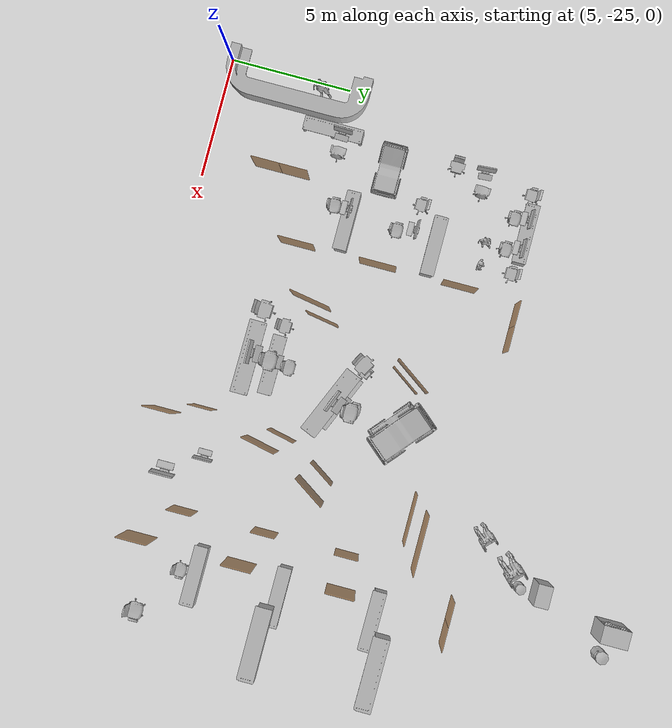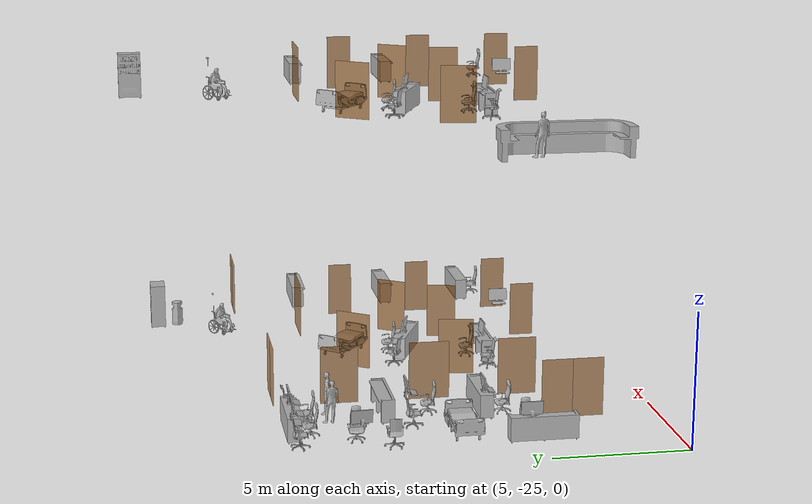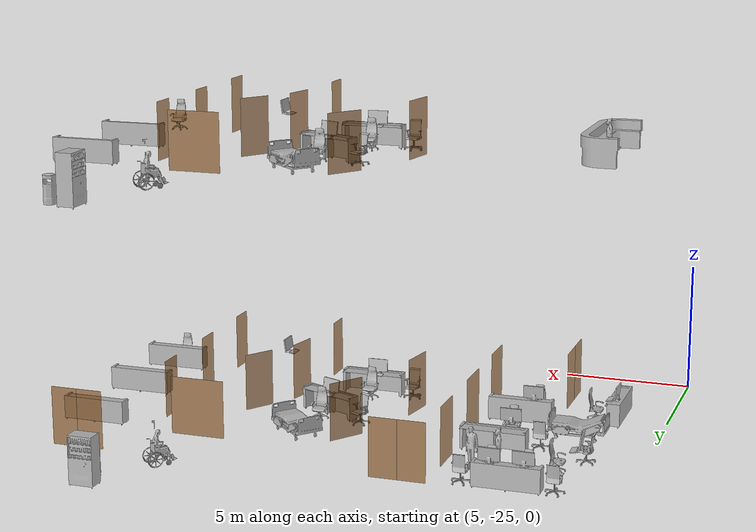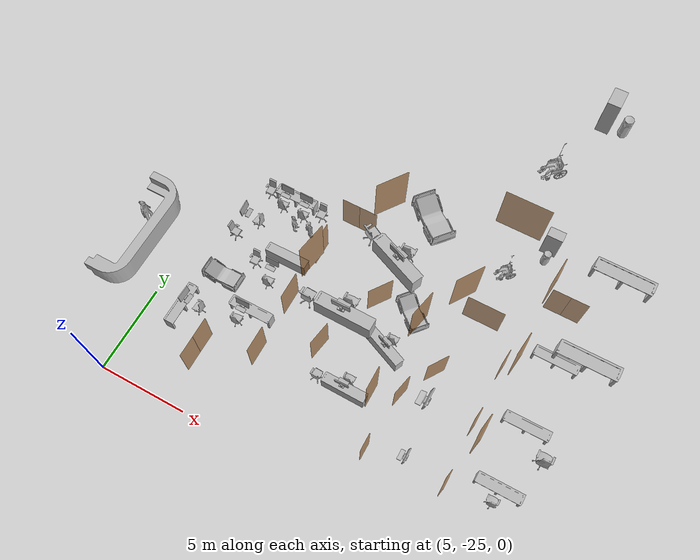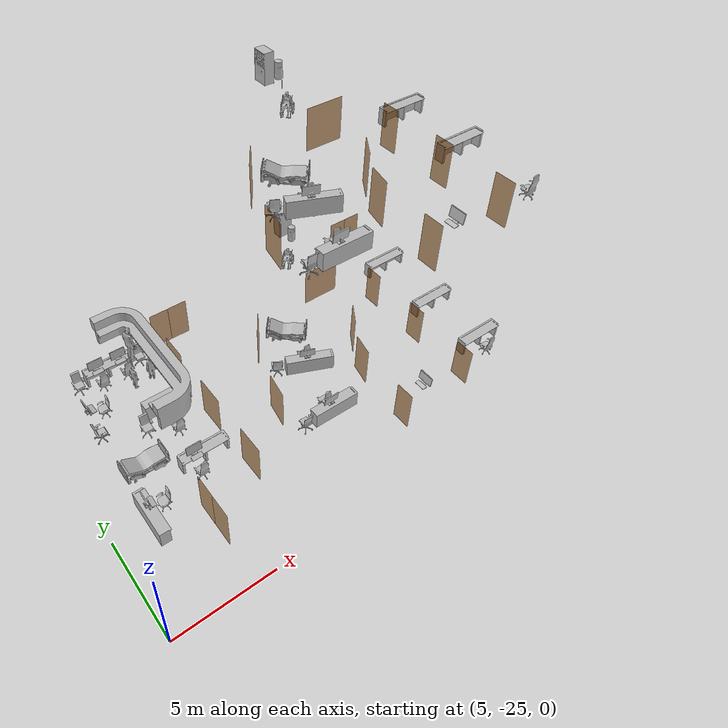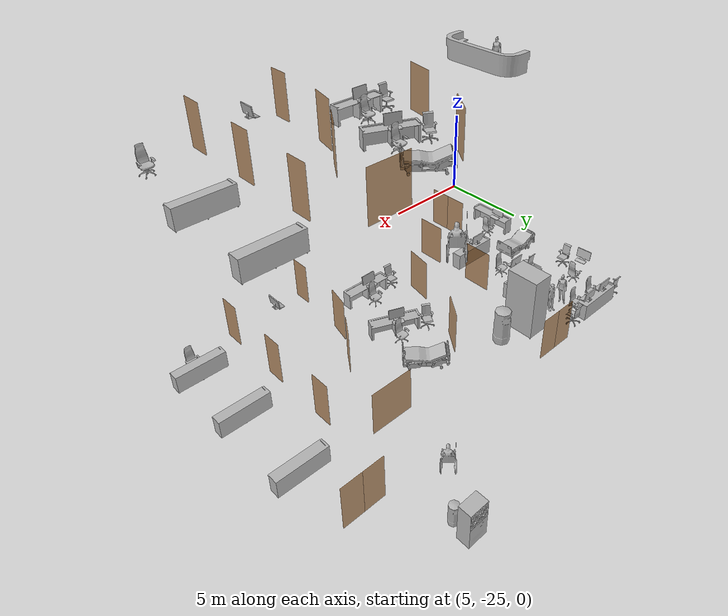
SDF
<sdf version="1.7">
 <world name="sim_world">
  <include>
   <name>OpenRobotics/CGMVanguard_13</name>
   <uri>model://CGMVanguard</uri>
   <pose>17.883800623052974 -14.5233106418984 0.0 0 0 -0.7084</pose>
   <static>True</static>
  </include>
  <include>
   <name>OpenRobotics/CGMVanguard_18</name>
   <uri>model://CGMVanguard</uri>
   <pose>7.788492750278842 -17.53642552209532 0.0 0 0 0.0</pose>
   <static>True</static>
  </include>
  <include>
   <name>OpenRobotics/NurseTable</name>
   <uri>model://NurseTable</uri>
   <pose>9.008949655782477 -11.460766893581026 0.0 0 0 0.0</pose>
   <static>True</static>
  </include>
  <include>
   <name>OpenRobotics/NurseTable_13</name>
   <uri>model://NurseTable</uri>
   <pose>6.869993461789938 -20.165659013114897 0.0 0 0 1.5708</pose>
   <static>True</static>
  </include>
  <include>
   <name>OpenRobotics/NurseTable_21</name>
   <uri>model://NurseTable</uri>
   <pose>16.804226760509227 -20.1163916772432 0.0 0 0 3.1309</pose>
   <static>True</static>
  </include>
  <include>
   <name>OpenRobotics/NurseTable_22</name>
   <uri>model://NurseTable</uri>
   <pose>17.55074804815201 -17.118864659051592 0.0 0 0 2.7367</pose>
   <static>True</static>
  </include>
  <include>
   <name>OpenRobotics/NurseTable_23</name>
   <uri>model://NurseTable</uri>
   <pose>25.736421676089403 -13.476554747894324 0.0 0 0 -0.0073</pose>
   <static>True</static>
  </include>
  <include>
   <name>OpenRobotics/NurseTable_24</name>
   <uri>model://NurseTable</uri>
   <pose>25.779766162839913 -17.413095650167318 0.0 0 0 0.0011</pose>
   <static>True</static>
  </include>
  <include>
   <name>OpenRobotics/NurseTable_25</name>
   <uri>model://NurseTable</uri>
   <pose>25.825910541902257 -20.877827775854794 0.0 0 0 -0.0008</pose>
   <static>True</static>
  </include>
  <include>
   <name>OpenRobotics/NurseTable_41</name>
   <uri>model://NurseTable</uri>
   <pose>10.358066997423185 -18.63942156070922 0.0 0 0 0.0</pose>
   <static>True</static>
  </include>
  <include>
   <name>OpenRobotics/NurseTable_44</name>
   <uri>model://NurseTable</uri>
   <pose>10.435117880081545 -15.01296873197186 0.0 0 0 3.1416</pose>
   <static>True</static>
  </include>
  <include>
   <name>OpenRobotics/DeskChair_6</name>
   <uri>model://DeskChair</uri>
   <pose>8.457209338102388 -12.107515095573259 0.0 0 0 1.5708</pose>
   <static>True</static>
  </include>
  <include>
   <name>OpenRobotics/DeskChair_7</name>
   <uri>model://DeskChair</uri>
   <pose>9.777573939463874 -12.138798507749712 0.0 0 0 1.5708</pose>
   <static>True</static>
  </include>
  <include>
   <name>OpenRobotics/DeskChair_8</name>
   <uri>model://DeskChair</uri>
   <pose>7.7663628321987686 -13.647159724625988 0.0 0 0 3.085</pose>
   <static>True</static>
  </include>
  <include>
   <name>OpenRobotics/DeskChair_9</name>
   <uri>model://DeskChair</uri>
   <pose>10.174431752624908 -16.65626322064537 0.0 0 0 1.5708</pose>
   <static>True</static>
  </include>
  <include>
   <name>OpenRobotics/DeskChair_10</name>
   <uri>model://DeskChair</uri>
   <pose>9.840140763816784 -19.37897003961388 0.0 0 0 1.6366</pose>
   <static>True</static>
  </include>
  <include>
   <name>OpenRobotics/DeskChair_11</name>
   <uri>model://DeskChair</uri>
   <pose>7.7000269220414665 -19.76694357909313 0.0 0 0 3.135</pose>
   <static>True</static>
  </include>
  <include>
   <name>OpenRobotics/DeskChair_24</name>
   <uri>model://DeskChair</uri>
   <pose>16.742736817814716 -19.462024537517806 0.0 0 0 1.5708</pose>
   <static>True</static>
  </include>
  <include>
   <name>OpenRobotics/DeskChair_25</name>
   <uri>model://DeskChair</uri>
   <pose>17.72436829352719 -16.434533287181274 0.0 0 0 1.5708</pose>
   <static>True</static>
  </include>
  <include>
   <name>OpenRobotics/DeskChair_47</name>
   <uri>model://DeskChair</uri>
   <pose>25.802676820122326 -21.585123649090438 0.0 0 0 1.5708</pose>
   <static>True</static>
  </include>
  <include>
   <name>OpenRobotics/OfficeChairGrey_28</name>
   <uri>model://OfficeChairGrey</uri>
   <pose>16.133006422829904 -16.265301334564068 0.0 0 0 2.6429</pose>
   <static>True</static>
  </include>
  <include>
   <name>OpenRobotics/OfficeChairGrey_29</name>
   <uri>model://OfficeChairGrey</uri>
   <pose>7.369235798623137 -11.728129687319727 0.0 0 0 -0.0108</pose>
   <static>True</static>
  </include>
  <include>
   <name>OpenRobotics/OfficeChairGrey_30</name>
   <uri>model://OfficeChairGrey</uri>
   <pose>10.697257797777018 -11.728129687319727 0.0 0 0 0.0021</pose>
   <static>True</static>
  </include>
  <include>
   <name>OpenRobotics/OfficeChairGrey_31</name>
   <uri>model://OfficeChairGrey</uri>
   <pose>7.1234375600938495 -14.885304411368807 0.0 0 0 1.5708</pose>
   <static>True</static>
  </include>
  <include>
   <name>OpenRobotics/OfficeChairGrey_32</name>
   <uri>model://OfficeChairGrey</uri>
   <pose>8.90753432560287 -16.00504595977079 0.0 0 0 0.0</pose>
   <static>True</static>
  </include>
  <include>
   <name>OpenRobotics/OfficeChairGrey_47</name>
   <uri>model://OfficeChairGrey</uri>
   <pose>15.156786277450882 -19.903922926041325 0.0 0 0 3.1056</pose>
   <static>True</static>
  </include>
  <include>
   <name>OpenRobotics/MonitorAndKeyboard_14</name>
   <uri>model://MonitorAndKeyboard</uri>
   <pose>6.871285719780015 -19.762474520210777 0.86 0 0 3.1083</pose>
   <static>True</static>
  </include>
  <include>
   <name>OpenRobotics/MonitorAndKeyboard_15</name>
   <uri>model://MonitorAndKeyboard</uri>
   <pose>9.869162724510605 -18.660824583669875 0.86 0 0 1.5708</pose>
   <static>True</static>
  </include>
  <include>
   <name>OpenRobotics/MonitorAndKeyboard_16</name>
   <uri>model://MonitorAndKeyboard</uri>
   <pose>10.009372716433992 -15.816510903426806 0.86 0 0 1.5708</pose>
   <static>True</static>
  </include>
  <include>
   <name>OpenRobotics/MonitorAndKeyboard_17</name>
   <uri>model://MonitorAndKeyboard</uri>
   <pose>6.924699050036543 -13.726660513057203 0.86 0 0 -3.0738</pose>
   <static>True</static>
  </include>
  <include>
   <name>OpenRobotics/MonitorAndKeyboard_18</name>
   <uri>model://MonitorAndKeyboard</uri>
   <pose>8.420299219260805 -11.46324372139534 0.86 0 0 1.5708</pose>
   <static>True</static>
  </include>
  <include>
   <name>OpenRobotics/MonitorAndKeyboard_19</name>
   <uri>model://MonitorAndKeyboard</uri>
   <pose>9.642156070920358 -11.469920387677407 0.86 0 0 1.5708</pose>
   <static>True</static>
  </include>
  <include>
   <name>OpenRobotics/MonitorAndKeyboard_20</name>
   <uri>model://MonitorAndKeyboard</uri>
   <pose>17.490523441406115 -17.052932579516188 0.86 0 0 -1.9526</pose>
   <static>True</static>
  </include>
  <include>
   <name>OpenRobotics/MonitorAndKeyboard_21</name>
   <uri>model://MonitorAndKeyboard</uri>
   <pose>16.64393292565672 -20.08408522749127 0.86 0 0 -1.5544</pose>
   <static>True</static>
  </include>
  <include>
   <name>OpenRobotics/MonitorAndKeyboard_51</name>
   <uri>model://MonitorAndKeyboard</uri>
   <pose>21.17286642821432 -21.759632321833795 0.86 0 0 0.0</pose>
   <static>True</static>
  </include>
  <include>
   <name>OpenRobotics/VendingMachine</name>
   <uri>model://VendingMachine</uri>
   <pose>22.896523210645764 -7.257832391061888 0.0 0 0 -3.1416</pose>
   <static>True</static>
  </include>
  <include>
   <name>OpenRobotics/LitterBin_7</name>
   <uri>model://LitterBin</uri>
   <pose>22.952844121379968 -8.078739279258498 0.0 0 0 1.5708</pose>
   <static>True</static>
  </include>
  <include>
   <name>OpenRobotics/OpScrubs_4</name>
   <uri>model://OpScrubs</uri>
   <pose>10.694134840967665 -12.935394792507992 0.0 0 0 2.9547</pose>
   <static>True</static>
  </include>
  <include>
   <name>OpenRobotics/PatientWheelChair_7</name>
   <uri>model://PatientWheelChair</uri>
   <pose>21.319780008461233 -9.919991538786979 0.0 0 0 -0.7854</pose>
   <static>True</static>
  </include>
  <include>
   <name>OpenRobotics/Scrubs_2</name>
   <uri>model://Scrubs</uri>
   <pose>9.769470404984432 -13.034683281412265 0.0 0 0 0.3851</pose>
   <static>True</static>
  </include>
  <model name="L1_left_consult_rm_13_outer">
   <pose>16.03554863274491 -14.728456597823172 0.0 0 0 0.9593844290063241</pose>
   <static>true</static>
   <link name="right">
    <pose>0 0 1.11 0 0 0</pose>
    <visual name="right_visual">
     <geometry><box><size>1.4433538767392087 0.03 2.2</size></box></geometry>
     <material>
      <ambient>0.5 0.25 0 0.6</ambient>
      <diffuse>0.5 0.25 0 0.6</diffuse>
      <pbr><metal><metalness>0.0</metalness></metal></pbr>
     </material>
    </visual>
    <collision name="right_collision">
     <geometry><box><size>1.4433538767392087 0.03 2.2</size></box></geometry>
     <surface><contact><collide_bitmask>0x02</collide_bitmask></contact></surface>
    </collision>
    <inertial>
     <mass>50.0</mass>
     <inertia><ixx>20.17041666666667</ixx><iyy>28.8469600562421</iyy><izz>8.684043389575429</izz></inertia>
    </inertial>
   </link>
   <joint name="right_joint" type="prismatic">
    <parent>world</parent>
    <child>right</child>
    <axis>
     <xyz>1 0 0</xyz>
     <limit><lower>0.0</lower><upper>1.4533538767392087</upper><effort>500.0</effort></limit>
    </axis>
   </joint>
  </model>
  <model name="L1_left_consult_rm_12_outer">
   <pose>14.50538056228608 -18.5739740779201 0.0 0 0 1.402401946784635</pose>
   <static>true</static>
   <link name="right">
    <pose>0 0 1.11 0 0 0</pose>
    <visual name="right_visual">
     <geometry><box><size>1.3727291591386541 0.03 2.2</size></box></geometry>
     <material>
      <ambient>0.5 0.25 0 0.6</ambient>
      <diffuse>0.5 0.25 0 0.6</diffuse>
      <pbr><metal><metalness>0.0</metalness></metal></pbr>
     </material>
    </visual>
    <collision name="right_collision">
     <geometry><box><size>1.3727291591386541 0.03 2.2</size></box></geometry>
     <surface><contact><collide_bitmask>0x02</collide_bitmask></contact></surface>
    </collision>
    <inertial>
     <mass>50.0</mass>
     <inertia><ixx>20.17041666666667</ixx><iyy>28.018272268122992</iyy><izz>7.855355601456319</izz></inertia>
    </inertial>
   </link>
   <joint name="right_joint" type="prismatic">
    <parent>world</parent>
    <child>right</child>
    <axis>
     <xyz>1 0 0</xyz>
     <limit><lower>0.0</lower><upper>1.3827291591386541</upper><effort>500.0</effort></limit>
    </axis>
   </joint>
  </model>
  <model name="L1_left_treatment_1">
   <pose>11.806230529595025 -13.583354486365922 0.0 0 0 1.5707963267948966</pose>
   <link name="right">
    <pose>0 0 1.11 0 0 0</pose>
    <visual name="right_visual">
     <geometry><box><size>1.418106611284182 0.03 2.2</size></box></geometry>
     <material>
      <ambient>0.5 0.25 0 0.6</ambient>
      <diffuse>0.5 0.25 0 0.6</diffuse>
      <pbr><metal><metalness>0.0</metalness></metal></pbr>
     </material>
    </visual>
    <collision name="right_collision">
     <geometry><box><size>1.418106611284182 0.03 2.2</size></box></geometry>
     <surface><contact><collide_bitmask>0x02</collide_bitmask></contact></surface>
    </collision>
    <inertial>
     <mass>50.0</mass>
     <inertia><ixx>20.17041666666667</ixx><iyy>28.545943170699616</iyy><izz>8.383026504032943</izz></inertia>
    </inertial>
   </link>
   <joint name="right_joint" type="prismatic">
    <parent>world</parent>
    <child>right</child>
    <axis>
     <xyz>1 0 0</xyz>
     <limit><lower>0.0</lower><upper>1.428106611284182</upper><effort>500.0</effort></limit>
    </axis>
   </joint>
   <plugin name="door" filename="libdoor.so">
    <v_max_door>0.2</v_max_door>
    <a_max_door>0.2</a_max_door>
    <a_nom_door>0.08</a_nom_door>
    <dx_min_door>0.001</dx_min_door>
    <f_max_door>100.0</f_max_door>
    <door name="L1_left_treatment_1" type="SlidingDoor" left_joint_name="empty_joint" right_joint_name="right_joint"/>
   </plugin>
  </model>
  <model name="L1_left_treatment_2">
   <pose>11.806230529595025 -16.992142609899634 0.0 0 0 -1.5707963267948966</pose>
   <static>true</static>
   <link name="right">
    <pose>0 0 1.11 0 0 0</pose>
    <visual name="right_visual">
     <geometry><box><size>1.5319868466597464 0.03 2.2</size></box></geometry>
     <material>
      <ambient>0.5 0.25 0 0.6</ambient>
      <diffuse>0.5 0.25 0 0.6</diffuse>
      <pbr><metal><metalness>0.0</metalness></metal></pbr>
     </material>
    </visual>
    <collision name="right_collision">
     <geometry><box><size>1.5319868466597464 0.03 2.2</size></box></geometry>
     <surface><contact><collide_bitmask>0x02</collide_bitmask></contact></surface>
    </collision>
    <inertial>
     <mass>50.0</mass>
     <inertia><ixx>20.17041666666667</ixx><iyy>29.945765409743643</iyy><izz>9.782848743076972</izz></inertia>
    </inertial>
   </link>
   <joint name="right_joint" type="prismatic">
    <parent>world</parent>
    <child>right</child>
    <axis>
     <xyz>1 0 0</xyz>
     <limit><lower>0.0</lower><upper>1.5419868466597464</upper><effort>500.0</effort></limit>
    </axis>
   </joint>
  </model>
  <model name="L1_left_counsel_1">
   <pose>11.806230529595025 -20.376902811430348 0.0 0 0 1.5707963267948966</pose>
   <static>true</static>
   <link name="right">
    <pose>0 0 1.11 0 0 0</pose>
    <visual name="right_visual">
     <geometry><box><size>1.4607242029152745 0.03 2.2</size></box></geometry>
     <material>
      <ambient>0.5 0.25 0 0.6</ambient>
      <diffuse>0.5 0.25 0 0.6</diffuse>
      <pbr><metal><metalness>0.0</metalness></metal></pbr>
     </material>
    </visual>
    <collision name="right_collision">
     <geometry><box><size>1.4607242029152745 0.03 2.2</size></box></geometry>
     <surface><contact><collide_bitmask>0x02</collide_bitmask></contact></surface>
    </collision>
    <inertial>
     <mass>50.0</mass>
     <inertia><ixx>20.17041666666667</ixx><iyy>29.057146654093604</iyy><izz>8.894229987426936</izz></inertia>
    </inertial>
   </link>
   <joint name="right_joint" type="prismatic">
    <parent>world</parent>
    <child>right</child>
    <axis>
     <xyz>1 0 0</xyz>
     <limit><lower>0.0</lower><upper>1.4707242029152745</upper><effort>500.0</effort></limit>
    </axis>
   </joint>
  </model>
  <model name="L1_left_counsel_3">
   <pose>9.016407061266882 -22.377170108841987 0.0 0 0 -1.5707963267948966</pose>
   <static>true</static>
   <link name="right">
    <pose>0 0 1.11 0 0 0</pose>
    <visual name="right_visual">
     <geometry><box><size>1.1436094765585965 0.03 2.2</size></box></geometry>
     <material>
      <ambient>0.5 0.25 0 0.6</ambient>
      <diffuse>0.5 0.25 0 0.6</diffuse>
      <pbr><metal><metalness>0.0</metalness></metal></pbr>
     </material>
    </visual>
    <collision name="right_collision">
     <geometry><box><size>1.1436094765585965 0.03 2.2</size></box></geometry>
     <surface><contact><collide_bitmask>0x02</collide_bitmask></contact></surface>
    </collision>
    <inertial>
     <mass>50.0</mass>
     <inertia><ixx>20.17041666666667</ixx><iyy>25.616010978644287</iyy><izz>5.453094311977613</izz></inertia>
    </inertial>
   </link>
   <joint name="right_joint" type="prismatic">
    <parent>world</parent>
    <child>right</child>
    <axis>
     <xyz>1 0 0</xyz>
     <limit><lower>0.0</lower><upper>1.1536094765585965</upper><effort>500.0</effort></limit>
    </axis>
   </joint>
  </model>
  <model name="L1_left_counsel_2">
   <pose>9.016407061266882 -21.218930041152284 0.0 0 0 1.5707963267948966</pose>
   <static>true</static>
   <link name="right">
    <pose>0 0 1.11 0 0 0</pose>
    <visual name="right_visual">
     <geometry><box><size>1.1528706588208146 0.03 2.2</size></box></geometry>
     <material>
      <ambient>0.5 0.25 0 0.6</ambient>
      <diffuse>0.5 0.25 0 0.6</diffuse>
      <pbr><metal><metalness>0.0</metalness></metal></pbr>
     </material>
    </visual>
    <collision name="right_collision">
     <geometry><box><size>1.1528706588208146 0.03 2.2</size></box></geometry>
     <surface><contact><collide_bitmask>0x02</collide_bitmask></contact></surface>
    </collision>
    <inertial>
     <mass>50.0</mass>
     <inertia><ixx>20.17041666666667</ixx><iyy>25.70462814987475</iyy><izz>5.541711483208079</izz></inertia>
    </inertial>
   </link>
   <joint name="right_joint" type="prismatic">
    <parent>world</parent>
    <child>right</child>
    <axis>
     <xyz>1 0 0</xyz>
     <limit><lower>0.0</lower><upper>1.1628706588208146</upper><effort>500.0</effort></limit>
    </axis>
   </joint>
  </model>
  <model name="L1_existing_ahu">
   <pose>12.856634360216926 -11.116353217183963 0.0 0 0 -3.1406699672959486</pose>
   <static>true</static>
   <link name="right">
    <pose>-0.5252021388763539 0 1.11 0 0 0</pose>
    <visual name="right_visual">
     <geometry><box><size>1.0404042777527078 0.03 2.2</size></box></geometry>
     <material>
      <ambient>0.5 0.25 0 0.6</ambient>
      <diffuse>0.5 0.25 0 0.6</diffuse>
      <pbr><metal><metalness>0.0</metalness></metal></pbr>
     </material>
    </visual>
    <collision name="right_collision">
     <geometry><box><size>1.0404042777527078 0.03 2.2</size></box></geometry>
     <surface><contact><collide_bitmask>0x02</collide_bitmask></contact></surface>
    </collision>
    <inertial>
     <mass>50.0</mass>
     <inertia><ixx>20.17041666666667</ixx><iyy>24.676837754858894</iyy><izz>4.513921088192224</izz></inertia>
    </inertial>
   </link>
   <joint name="right_joint" type="revolute">
    <parent>world</parent>
    <child>right</child>
    <axis><xyz>0 0 1</xyz><limit><lower>0</lower><upper>1.57</upper></limit></axis>
    <pose>-0.5252021388763539 0 0 0 0 0</pose>
   </joint>
   <link name="left">
    <pose>0.5252021388763539 0 1.11 0 0 0</pose>
    <visual name="left_visual">
     <geometry><box><size>1.0404042777527078 0.03 2.2</size></box></geometry>
     <material>
      <ambient>0.5 0.25 0 0.6</ambient>
      <diffuse>0.5 0.25 0 0.6</diffuse>
      <pbr><metal><metalness>0.0</metalness></metal></pbr>
     </material>
    </visual>
    <collision name="left_collision">
     <geometry><box><size>1.0404042777527078 0.03 2.2</size></box></geometry>
     <surface><contact><collide_bitmask>0x02</collide_bitmask></contact></surface>
    </collision>
    <inertial>
     <mass>50.0</mass>
     <inertia><ixx>20.17041666666667</ixx><iyy>24.676837754858894</iyy><izz>4.513921088192224</izz></inertia>
    </inertial>
   </link>
   <joint name="left_joint" type="revolute">
    <parent>world</parent>
    <child>left</child>
    <axis><xyz>0 0 1</xyz><limit><lower>-1.57</lower><upper>0</upper></limit></axis>
    <pose>0.5252021388763539 0 0 0 0 0</pose>
   </joint>
  </model>
  <model name="L1_left_consult_rm_2_inner">
   <pose>23.381523787546655 -18.60085573631785 0.0 0 0 -1.5707963267948966</pose>
   <static>true</static>
   <link name="right">
    <pose>0 0 1.11 0 0 0</pose>
    <visual name="right_visual">
     <geometry><box><size>0.9945421329948851 0.03 2.2</size></box></geometry>
     <material>
      <ambient>0.5 0.25 0 0.6</ambient>
      <diffuse>0.5 0.25 0 0.6</diffuse>
      <pbr><metal><metalness>0.0</metalness></metal></pbr>
     </material>
    </visual>
    <collision name="right_collision">
     <geometry><box><size>0.9945421329948851 0.03 2.2</size></box></geometry>
     <surface><contact><collide_bitmask>0x02</collide_bitmask></contact></surface>
    </collision>
    <inertial>
     <mass>50.0</mass>
     <inertia><ixx>20.17041666666667</ixx><iyy>24.287975226258403</iyy><izz>4.125058559591733</izz></inertia>
    </inertial>
   </link>
   <joint name="right_joint" type="prismatic">
    <parent>world</parent>
    <child>right</child>
    <axis>
     <xyz>1 0 0</xyz>
     <limit><lower>0.0</lower><upper>1.0045421329948852</upper><effort>500.0</effort></limit>
    </axis>
   </joint>
  </model>
  <model name="L1_left_consult_rm_13_inner">
   <pose>20.473727933541035 -17.004284450598067 0.0 0 0 0.9869285289705991</pose>
   <static>true</static>
   <link name="left">
    <pose>0 0 1.11 0 0 0</pose>
    <visual name="left_visual">
     <geometry><box><size>1.2252035838140947 0.03 2.2</size></box></geometry>
     <material>
      <ambient>0.5 0.25 0 0.6</ambient>
      <diffuse>0.5 0.25 0 0.6</diffuse>
      <pbr><metal><metalness>0.0</metalness></metal></pbr>
     </material>
    </visual>
    <collision name="left_collision">
     <geometry><box><size>1.2252035838140947 0.03 2.2</size></box></geometry>
     <surface><contact><collide_bitmask>0x02</collide_bitmask></contact></surface>
    </collision>
    <inertial>
     <mass>50.0</mass>
     <inertia><ixx>20.17041666666667</ixx><iyy>26.421349257462094</iyy><izz>6.258432590795422</izz></inertia>
    </inertial>
   </link>
   <joint name="left_joint" type="revolute">
    <parent>world</parent>
    <child>left</child>
    <axis><xyz>0 0 1</xyz><limit><lower>-1.57</lower><upper>0</upper></limit></axis>
    <pose>0.6176017919070473 0 0 0 0 0</pose>
   </joint>
  </model>
  <model name="L1_left_consult_rm_12_inner">
   <pose>19.442438752355695 -18.948876966270543 0.0 0 0 1.3549047324942773</pose>
   <static>true</static>
   <link name="left">
    <pose>0 0 1.11 0 0 0</pose>
    <visual name="left_visual">
     <geometry><box><size>1.1707228872175774 0.03 2.2</size></box></geometry>
     <material>
      <ambient>0.5 0.25 0 0.6</ambient>
      <diffuse>0.5 0.25 0 0.6</diffuse>
      <pbr><metal><metalness>0.0</metalness></metal></pbr>
     </material>
    </visual>
    <collision name="left_collision">
     <geometry><box><size>1.1707228872175774 0.03 2.2</size></box></geometry>
     <surface><contact><collide_bitmask>0x02</collide_bitmask></contact></surface>
    </collision>
    <inertial>
     <mass>50.0</mass>
     <inertia><ixx>20.17041666666667</ixx><iyy>25.87746699439609</iyy><izz>5.714550327729419</izz></inertia>
    </inertial>
   </link>
   <joint name="left_joint" type="revolute">
    <parent>world</parent>
    <child>left</child>
    <axis><xyz>0 0 1</xyz><limit><lower>-1.57</lower><upper>0</upper></limit></axis>
    <pose>0.5903614436087887 0 0 0 0 0</pose>
   </joint>
  </model>
  <model name="L1_left_consult_rm_11_inner">
   <pose>19.167982000692298 -22.335117880081555 0.0 0 0 1.5707963267948966</pose>
   <static>true</static>
   <link name="right">
    <pose>0 0 1.11 0 0 0</pose>
    <visual name="right_visual">
     <geometry><box><size>0.960216530133456 0.03 2.2</size></box></geometry>
     <material>
      <ambient>0.5 0.25 0 0.6</ambient>
      <diffuse>0.5 0.25 0 0.6</diffuse>
      <pbr><metal><metalness>0.0</metalness></metal></pbr>
     </material>
    </visual>
    <collision name="right_collision">
     <geometry><box><size>0.960216530133456 0.03 2.2</size></box></geometry>
     <surface><contact><collide_bitmask>0x02</collide_bitmask></contact></surface>
    </collision>
    <inertial>
     <mass>50.0</mass>
     <inertia><ixx>20.17041666666667</ixx><iyy>24.00839910308973</iyy><izz>3.8454824364230595</izz></inertia>
    </inertial>
   </link>
   <joint name="right_joint" type="prismatic">
    <parent>world</parent>
    <child>right</child>
    <axis>
     <xyz>1 0 0</xyz>
     <limit><lower>0.0</lower><upper>0.970216530133456</upper><effort>500.0</effort></limit>
    </axis>
   </joint>
  </model>
  <model name="L1_left_consult_rm_1_inner">
   <pose>23.381523787546655 -15.199148109688101 0.0 0 0 -1.5707963267948966</pose>
   <static>true</static>
   <link name="right">
    <pose>0 0 1.11 0 0 0</pose>
    <visual name="right_visual">
     <geometry><box><size>0.9793042575285555 0.03 2.2</size></box></geometry>
     <material>
      <ambient>0.5 0.25 0 0.6</ambient>
      <diffuse>0.5 0.25 0 0.6</diffuse>
      <pbr><metal><metalness>0.0</metalness></metal></pbr>
     </material>
    </visual>
    <collision name="right_collision">
     <geometry><box><size>0.9793042575285555 0.03 2.2</size></box></geometry>
     <surface><contact><collide_bitmask>0x02</collide_bitmask></contact></surface>
    </collision>
    <inertial>
     <mass>50.0</mass>
     <inertia><ixx>20.17041666666667</ixx><iyy>24.162653453389822</iyy><izz>3.999736786723148</izz></inertia>
    </inertial>
   </link>
   <joint name="right_joint" type="prismatic">
    <parent>world</parent>
    <child>right</child>
    <axis>
     <xyz>1 0 0</xyz>
     <limit><lower>0.0</lower><upper>0.9893042575285556</upper><effort>500.0</effort></limit>
    </axis>
   </joint>
  </model>
  <model name="L1_left_consult_rm_3_inner">
   <pose>23.381523787546655 -22.029202722972215 0.0 0 0 -1.5707963267948966</pose>
   <static>true</static>
   <link name="right">
    <pose>0 0 1.11 0 0 0</pose>
    <visual name="right_visual">
     <geometry><box><size>1.0173451021114575 0.03 2.2</size></box></geometry>
     <material>
      <ambient>0.5 0.25 0 0.6</ambient>
      <diffuse>0.5 0.25 0 0.6</diffuse>
      <pbr><metal><metalness>0.0</metalness></metal></pbr>
     </material>
    </visual>
    <collision name="right_collision">
     <geometry><box><size>1.0173451021114575 0.03 2.2</size></box></geometry>
     <surface><contact><collide_bitmask>0x02</collide_bitmask></contact></surface>
    </collision>
    <inertial>
     <mass>50.0</mass>
     <inertia><ixx>20.17041666666667</ixx><iyy>24.479129403292387</iyy><izz>4.316212736625716</izz></inertia>
    </inertial>
   </link>
   <joint name="right_joint" type="prismatic">
    <parent>world</parent>
    <child>right</child>
    <axis>
     <xyz>1 0 0</xyz>
     <limit><lower>0.0</lower><upper>1.0273451021114575</upper><effort>500.0</effort></limit>
    </axis>
   </joint>
  </model>
  <model name="L1_existing_single_ahu">
   <pose>24.978579670012714 -10.622360678435454 0.0 0 0 3.141592653589793</pose>
   <static>true</static>
   <link name="right">
    <pose>-0.502641244567517 0 1.11 0 0 0</pose>
    <visual name="right_visual">
     <geometry><box><size>0.995282489135034 0.03 2.2</size></box></geometry>
     <material>
      <ambient>0.5 0.25 0 0.6</ambient>
      <diffuse>0.5 0.25 0 0.6</diffuse>
      <pbr><metal><metalness>0.0</metalness></metal></pbr>
     </material>
    </visual>
    <collision name="right_collision">
     <geometry><box><size>0.995282489135034 0.03 2.2</size></box></geometry>
     <surface><contact><collide_bitmask>0x02</collide_bitmask></contact></surface>
    </collision>
    <inertial>
     <mass>50.0</mass>
     <inertia><ixx>20.17041666666667</ixx><iyy>24.29411347157846</iyy><izz>4.131196804911788</izz></inertia>
    </inertial>
   </link>
   <joint name="right_joint" type="revolute">
    <parent>world</parent>
    <child>right</child>
    <axis><xyz>0 0 1</xyz><limit><lower>0</lower><upper>1.57</upper></limit></axis>
    <pose>-0.502641244567517 0 0 0 0 0</pose>
   </joint>
   <link name="left">
    <pose>0.502641244567517 0 1.11 0 0 0</pose>
    <visual name="left_visual">
     <geometry><box><size>0.995282489135034 0.03 2.2</size></box></geometry>
     <material>
      <ambient>0.5 0.25 0 0.6</ambient>
      <diffuse>0.5 0.25 0 0.6</diffuse>
      <pbr><metal><metalness>0.0</metalness></metal></pbr>
     </material>
    </visual>
    <collision name="left_collision">
     <geometry><box><size>0.995282489135034 0.03 2.2</size></box></geometry>
     <surface><contact><collide_bitmask>0x02</collide_bitmask></contact></surface>
    </collision>
    <inertial>
     <mass>50.0</mass>
     <inertia><ixx>20.17041666666667</ixx><iyy>24.29411347157846</iyy><izz>4.131196804911788</izz></inertia>
    </inertial>
   </link>
   <joint name="left_joint" type="revolute">
    <parent>world</parent>
    <child>left</child>
    <axis><xyz>0 0 1</xyz><limit><lower>-1.57</lower><upper>0</upper></limit></axis>
    <pose>0.502641244567517 0 0 0 0 0</pose>
   </joint>
  </model>
  <model name="L1_left_inner">
   <pose>21.332204530594996 -13.113995615553259 0.0 0 0 0.0</pose>
   <link name="right">
    <pose>0 0 1.11 0 0 0</pose>
    <visual name="right_visual">
     <geometry><box><size>2.0904845967462773 0.03 2.2</size></box></geometry>
     <material>
      <ambient>0.5 0.25 0 0.6</ambient>
      <diffuse>0.5 0.25 0 0.6</diffuse>
      <pbr><metal><metalness>0.0</metalness></metal></pbr>
     </material>
    </visual>
    <collision name="right_collision">
     <geometry><box><size>2.0904845967462773 0.03 2.2</size></box></geometry>
     <surface><contact><collide_bitmask>0x02</collide_bitmask></contact></surface>
    </collision>
    <inertial>
     <mass>50.0</mass>
     <inertia><ixx>20.17041666666667</ixx><iyy>38.37552437180603</iyy><izz>18.212607705139355</izz></inertia>
    </inertial>
   </link>
   <joint name="right_joint" type="prismatic">
    <parent>world</parent>
    <child>right</child>
    <axis>
     <xyz>1 0 0</xyz>
     <limit><lower>0.0</lower><upper>2.100484596746277</upper><effort>500.0</effort></limit>
    </axis>
   </joint>
   <plugin name="door" filename="libdoor.so">
    <v_max_door>0.2</v_max_door>
    <a_max_door>0.2</a_max_door>
    <a_nom_door>0.08</a_nom_door>
    <dx_min_door>0.001</dx_min_door>
    <f_max_door>100.0</f_max_door>
    <door name="L1_left_inner" type="SlidingDoor" left_joint_name="empty_joint" right_joint_name="right_joint"/>
   </plugin>
  </model>
  <include>
   <name>OpenRobotics/CGMVanguard_31</name>
   <uri>model://CGMVanguard</uri>
   <pose>17.883800623052974 -14.5233106418984 10.0 0 0 -0.7084</pose>
   <static>True</static>
  </include>
  <include>
   <name>OpenRobotics/NurseTable_61</name>
   <uri>model://NurseTable</uri>
   <pose>16.804226760509227 -20.1163916772432 10.0 0 0 3.1309</pose>
   <static>True</static>
  </include>
  <include>
   <name>OpenRobotics/NurseTable_62</name>
   <uri>model://NurseTable</uri>
   <pose>17.55074804815201 -17.118864659051592 10.0 0 0 2.7367</pose>
   <static>True</static>
  </include>
  <include>
   <name>OpenRobotics/NurseTable_63</name>
   <uri>model://NurseTable</uri>
   <pose>25.736421676089403 -13.476554747894324 10.0 0 0 -0.0073</pose>
   <static>True</static>
  </include>
  <include>
   <name>OpenRobotics/NurseTable_64</name>
   <uri>model://NurseTable</uri>
   <pose>25.779766162839913 -17.413095650167318 10.0 0 0 0.0011</pose>
   <static>True</static>
  </include>
  <include>
   <name>OpenRobotics/DeskChair_64</name>
   <uri>model://DeskChair</uri>
   <pose>16.742736817814716 -19.462024537517806 10.0 0 0 1.5708</pose>
   <static>True</static>
  </include>
  <include>
   <name>OpenRobotics/DeskChair_65</name>
   <uri>model://DeskChair</uri>
   <pose>17.72436829352719 -16.434533287181274 10.0 0 0 1.5708</pose>
   <static>True</static>
  </include>
  <include>
   <name>OpenRobotics/DeskChair_84</name>
   <uri>model://DeskChair</uri>
   <pose>25.802676820122326 -21.585123649090438 10.0 0 0 1.5708</pose>
   <static>True</static>
  </include>
  <include>
   <name>OpenRobotics/OfficeChairGrey_73</name>
   <uri>model://OfficeChairGrey</uri>
   <pose>16.133006422829904 -16.265301334564068 10.0 0 0 2.6429</pose>
   <static>True</static>
  </include>
  <include>
   <name>OpenRobotics/OfficeChairGrey_83</name>
   <uri>model://OfficeChairGrey</uri>
   <pose>15.156786277450882 -19.903922926041325 10.0 0 0 3.1056</pose>
   <static>True</static>
  </include>
  <include>
   <name>OpenRobotics/MonitorAndKeyboard_63</name>
   <uri>model://MonitorAndKeyboard</uri>
   <pose>17.490523441406115 -17.052932579516188 10.86 0 0 -1.9526</pose>
   <static>True</static>
  </include>
  <include>
   <name>OpenRobotics/MonitorAndKeyboard_64</name>
   <uri>model://MonitorAndKeyboard</uri>
   <pose>16.64393292565672 -20.08408522749127 10.86 0 0 -1.5544</pose>
   <static>True</static>
  </include>
  <include>
   <name>OpenRobotics/MonitorAndKeyboard_91</name>
   <uri>model://MonitorAndKeyboard</uri>
   <pose>21.17286642821432 -21.759632321833795 10.86 0 0 0.0</pose>
   <static>True</static>
  </include>
  <include>
   <name>OpenRobotics/VendingMachine_7</name>
   <uri>model://VendingMachine</uri>
   <pose>22.41959924618286 -6.369943463712939 10.0 0 0 -1.5708</pose>
   <static>True</static>
  </include>
  <include>
   <name>OpenRobotics/LitterBin_16</name>
   <uri>model://LitterBin</uri>
   <pose>23.276904734433312 -6.453832544902125 10.0 0 0 1.5708</pose>
   <static>True</static>
  </include>
  <include>
   <name>OpenRobotics/PatientWheelChair_14</name>
   <uri>model://PatientWheelChair</uri>
   <pose>21.319780008461233 -9.919991538786979 10.0 0 0 -0.7854</pose>
   <static>True</static>
  </include>
  <include>
   <name>OpenRobotics/NurseDesk_3</name>
   <uri>model://NurseDesk</uri>
   <pose>8.070662666820514 -20.873708703511422 10.0 0 0 1.5708</pose>
   <static>True</static>
  </include>
  <include>
   <name>OpenRobotics/Scrubs_10</name>
   <uri>model://Scrubs</uri>
   <pose>7.594546363601406 -20.084569824237548 10.0 0 0 0.4028</pose>
   <static>True</static>
  </include>
  <model name="L2_left_consult_rm_13_outer">
   <pose>16.03554863274491 -14.728456597823172 10.0 0 0 0.9593844290063241</pose>
   <static>true</static>
   <link name="right">
    <pose>0 0 1.11 0 0 0</pose>
    <visual name="right_visual">
     <geometry><box><size>1.4433538767392087 0.03 2.2</size></box></geometry>
     <material>
      <ambient>0.5 0.25 0 0.6</ambient>
      <diffuse>0.5 0.25 0 0.6</diffuse>
      <pbr><metal><metalness>0.0</metalness></metal></pbr>
     </material>
    </visual>
    <collision name="right_collision">
     <geometry><box><size>1.4433538767392087 0.03 2.2</size></box></geometry>
     <surface><contact><collide_bitmask>0x02</collide_bitmask></contact></surface>
    </collision>
    <inertial>
     <mass>50.0</mass>
     <inertia><ixx>20.17041666666667</ixx><iyy>28.8469600562421</iyy><izz>8.684043389575429</izz></inertia>
    </inertial>
   </link>
   <joint name="right_joint" type="prismatic">
    <parent>world</parent>
    <child>right</child>
    <axis>
     <xyz>1 0 0</xyz>
     <limit><lower>0.0</lower><upper>1.4533538767392087</upper><effort>500.0</effort></limit>
    </axis>
   </joint>
  </model>
  <model name="L2_left_consult_rm_12_outer">
   <pose>14.50538056228608 -18.5739740779201 10.0 0 0 1.402401946784635</pose>
   <static>true</static>
   <link name="right">
    <pose>0 0 1.11 0 0 0</pose>
    <visual name="right_visual">
     <geometry><box><size>1.3727291591386541 0.03 2.2</size></box></geometry>
     <material>
      <ambient>0.5 0.25 0 0.6</ambient>
      <diffuse>0.5 0.25 0 0.6</diffuse>
      <pbr><metal><metalness>0.0</metalness></metal></pbr>
     </material>
    </visual>
    <collision name="right_collision">
     <geometry><box><size>1.3727291591386541 0.03 2.2</size></box></geometry>
     <surface><contact><collide_bitmask>0x02</collide_bitmask></contact></surface>
    </collision>
    <inertial>
     <mass>50.0</mass>
     <inertia><ixx>20.17041666666667</ixx><iyy>28.018272268122992</iyy><izz>7.855355601456319</izz></inertia>
    </inertial>
   </link>
   <joint name="right_joint" type="prismatic">
    <parent>world</parent>
    <child>right</child>
    <axis>
     <xyz>1 0 0</xyz>
     <limit><lower>0.0</lower><upper>1.3827291591386541</upper><effort>500.0</effort></limit>
    </axis>
   </joint>
  </model>
  <model name="L2_left_consult_rm_13_inner">
   <pose>20.473727933541035 -17.004284450598067 10.0 0 0 0.9869285289705991</pose>
   <static>true</static>
   <link name="left">
    <pose>0 0 1.11 0 0 0</pose>
    <visual name="left_visual">
     <geometry><box><size>1.2252035838140947 0.03 2.2</size></box></geometry>
     <material>
      <ambient>0.5 0.25 0 0.6</ambient>
      <diffuse>0.5 0.25 0 0.6</diffuse>
      <pbr><metal><metalness>0.0</metalness></metal></pbr>
     </material>
    </visual>
    <collision name="left_collision">
     <geometry><box><size>1.2252035838140947 0.03 2.2</size></box></geometry>
     <surface><contact><collide_bitmask>0x02</collide_bitmask></contact></surface>
    </collision>
    <inertial>
     <mass>50.0</mass>
     <inertia><ixx>20.17041666666667</ixx><iyy>26.421349257462094</iyy><izz>6.258432590795422</izz></inertia>
    </inertial>
   </link>
   <joint name="left_joint" type="revolute">
    <parent>world</parent>
    <child>left</child>
    <axis><xyz>0 0 1</xyz><limit><lower>-1.57</lower><upper>0</upper></limit></axis>
    <pose>0.6176017919070473 0 0 0 0 0</pose>
   </joint>
  </model>
  <model name="L2_left_consult_rm_12_inner">
   <pose>19.442438752355695 -18.948876966270543 10.0 0 0 1.3549047324942773</pose>
   <static>true</static>
   <link name="left">
    <pose>0 0 1.11 0 0 0</pose>
    <visual name="left_visual">
     <geometry><box><size>1.1707228872175774 0.03 2.2</size></box></geometry>
     <material>
      <ambient>0.5 0.25 0 0.6</ambient>
      <diffuse>0.5 0.25 0 0.6</diffuse>
      <pbr><metal><metalness>0.0</metalness></metal></pbr>
     </material>
    </visual>
    <collision name="left_collision">
     <geometry><box><size>1.1707228872175774 0.03 2.2</size></box></geometry>
     <surface><contact><collide_bitmask>0x02</collide_bitmask></contact></surface>
    </collision>
    <inertial>
     <mass>50.0</mass>
     <inertia><ixx>20.17041666666667</ixx><iyy>25.87746699439609</iyy><izz>5.714550327729419</izz></inertia>
    </inertial>
   </link>
   <joint name="left_joint" type="revolute">
    <parent>world</parent>
    <child>left</child>
    <axis><xyz>0 0 1</xyz><limit><lower>-1.57</lower><upper>0</upper></limit></axis>
    <pose>0.5903614436087887 0 0 0 0 0</pose>
   </joint>
  </model>
  <model name="L2_left_consult_rm_11_inner">
   <pose>19.167982000692298 -22.335117880081555 10.0 0 0 1.5707963267948966</pose>
   <static>true</static>
   <link name="right">
    <pose>0 0 1.11 0 0 0</pose>
    <visual name="right_visual">
     <geometry><box><size>0.960216530133456 0.03 2.2</size></box></geometry>
     <material>
      <ambient>0.5 0.25 0 0.6</ambient>
      <diffuse>0.5 0.25 0 0.6</diffuse>
      <pbr><metal><metalness>0.0</metalness></metal></pbr>
     </material>
    </visual>
    <collision name="right_collision">
     <geometry><box><size>0.960216530133456 0.03 2.2</size></box></geometry>
     <surface><contact><collide_bitmask>0x02</collide_bitmask></contact></surface>
    </collision>
    <inertial>
     <mass>50.0</mass>
     <inertia><ixx>20.17041666666667</ixx><iyy>24.00839910308973</iyy><izz>3.8454824364230595</izz></inertia>
    </inertial>
   </link>
   <joint name="right_joint" type="prismatic">
    <parent>world</parent>
    <child>right</child>
    <axis>
     <xyz>1 0 0</xyz>
     <limit><lower>0.0</lower><upper>0.970216530133456</upper><effort>500.0</effort></limit>
    </axis>
   </joint>
  </model>
  <model name="L2_left_consult_rm_3_inner">
   <pose>23.381523787546655 -22.029202722972215 10.0 0 0 -1.5707963267948966</pose>
   <static>true</static>
   <link name="right">
    <pose>0 0 1.11 0 0 0</pose>
    <visual name="right_visual">
     <geometry><box><size>1.0173451021114575 0.03 2.2</size></box></geometry>
     <material>
      <ambient>0.5 0.25 0 0.6</ambient>
      <diffuse>0.5 0.25 0 0.6</diffuse>
      <pbr><metal><metalness>0.0</metalness></metal></pbr>
     </material>
    </visual>
    <collision name="right_collision">
     <geometry><box><size>1.0173451021114575 0.03 2.2</size></box></geometry>
     <surface><contact><collide_bitmask>0x02</collide_bitmask></contact></surface>
    </collision>
    <inertial>
     <mass>50.0</mass>
     <inertia><ixx>20.17041666666667</ixx><iyy>24.479129403292387</iyy><izz>4.316212736625716</izz></inertia>
    </inertial>
   </link>
   <joint name="right_joint" type="prismatic">
    <parent>world</parent>
    <child>right</child>
    <axis>
     <xyz>1 0 0</xyz>
     <limit><lower>0.0</lower><upper>1.0273451021114575</upper><effort>500.0</effort></limit>
    </axis>
   </joint>
  </model>
  <model name="L2_left_consult_rm_2_inner">
   <pose>23.381523787546655 -18.60085573631785 10.0 0 0 -1.5707963267948966</pose>
   <static>true</static>
   <link name="right">
    <pose>0 0 1.11 0 0 0</pose>
    <visual name="right_visual">
     <geometry><box><size>0.9945421329948851 0.03 2.2</size></box></geometry>
     <material>
      <ambient>0.5 0.25 0 0.6</ambient>
      <diffuse>0.5 0.25 0 0.6</diffuse>
      <pbr><metal><metalness>0.0</metalness></metal></pbr>
     </material>
    </visual>
    <collision name="right_collision">
     <geometry><box><size>0.9945421329948851 0.03 2.2</size></box></geometry>
     <surface><contact><collide_bitmask>0x02</collide_bitmask></contact></surface>
    </collision>
    <inertial>
     <mass>50.0</mass>
     <inertia><ixx>20.17041666666667</ixx><iyy>24.287975226258403</iyy><izz>4.125058559591733</izz></inertia>
    </inertial>
   </link>
   <joint name="right_joint" type="prismatic">
    <parent>world</parent>
    <child>right</child>
    <axis>
     <xyz>1 0 0</xyz>
     <limit><lower>0.0</lower><upper>1.0045421329948852</upper><effort>500.0</effort></limit>
    </axis>
   </joint>
  </model>
  <model name="L2_left_consult_rm_1_inner">
   <pose>23.381523787546655 -15.199148109688101 10.0 0 0 -1.5707963267948966</pose>
   <static>true</static>
   <link name="right">
    <pose>0 0 1.11 0 0 0</pose>
    <visual name="right_visual">
     <geometry><box><size>0.9793042575285555 0.03 2.2</size></box></geometry>
     <material>
      <ambient>0.5 0.25 0 0.6</ambient>
      <diffuse>0.5 0.25 0 0.6</diffuse>
      <pbr><metal><metalness>0.0</metalness></metal></pbr>
     </material>
    </visual>
    <collision name="right_collision">
     <geometry><box><size>0.9793042575285555 0.03 2.2</size></box></geometry>
     <surface><contact><collide_bitmask>0x02</collide_bitmask></contact></surface>
    </collision>
    <inertial>
     <mass>50.0</mass>
     <inertia><ixx>20.17041666666667</ixx><iyy>24.162653453389822</iyy><izz>3.999736786723148</izz></inertia>
    </inertial>
   </link>
   <joint name="right_joint" type="prismatic">
    <parent>world</parent>
    <child>right</child>
    <axis>
     <xyz>1 0 0</xyz>
     <limit><lower>0.0</lower><upper>0.9893042575285556</upper><effort>500.0</effort></limit>
    </axis>
   </joint>
  </model>
  <model name="m">
   <pose>21.188777354717146 -13.113995615553259 10.0 0 0 0.0</pose>
   <link name="right">
    <pose>0 0 1.11 0 0 0</pose>
    <visual name="right_visual">
     <geometry><box><size>1.98497711626476 0.03 2.2</size></box></geometry>
     <material>
      <ambient>0.5 0.25 0 0.6</ambient>
      <diffuse>0.5 0.25 0 0.6</diffuse>
      <pbr><metal><metalness>0.0</metalness></metal></pbr>
     </material>
    </visual>
    <collision name="right_collision">
     <geometry><box><size>1.98497711626476 0.03 2.2</size></box></geometry>
     <surface><contact><collide_bitmask>0x02</collide_bitmask></contact></surface>
    </collision>
    <inertial>
     <mass>50.0</mass>
     <inertia><ixx>20.17041666666667</ixx><iyy>36.58389230039485</iyy><izz>16.42097563372818</izz></inertia>
    </inertial>
   </link>
   <joint name="right_joint" type="prismatic">
    <parent>world</parent>
    <child>right</child>
    <axis>
     <xyz>1 0 0</xyz>
     <limit><lower>0.0</lower><upper>1.99497711626476</upper><effort>500.0</effort></limit>
    </axis>
   </joint>
   <plugin name="door" filename="libdoor.so">
    <v_max_door>0.2</v_max_door>
    <a_max_door>0.2</a_max_door>
    <a_nom_door>0.08</a_nom_door>
    <dx_min_door>0.001</dx_min_door>
    <f_max_door>100.0</f_max_door>
    <door name="m" type="SlidingDoor" left_joint_name="empty_joint" right_joint_name="right_joint"/>
   </plugin>
  </model>
 </world>
</sdf>
